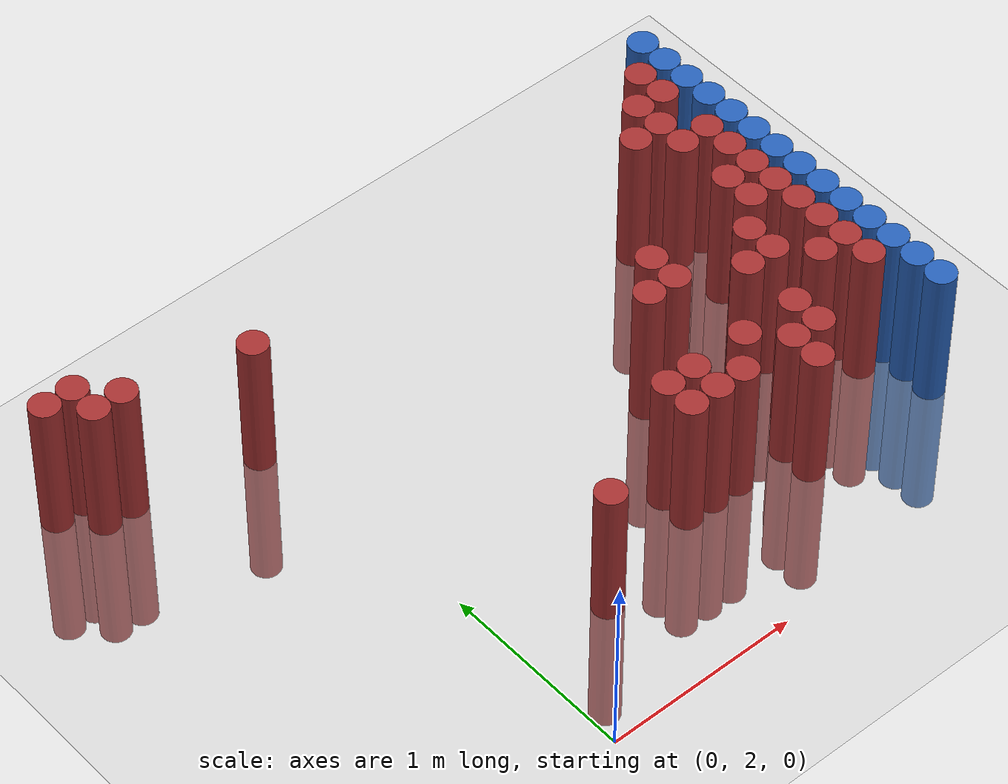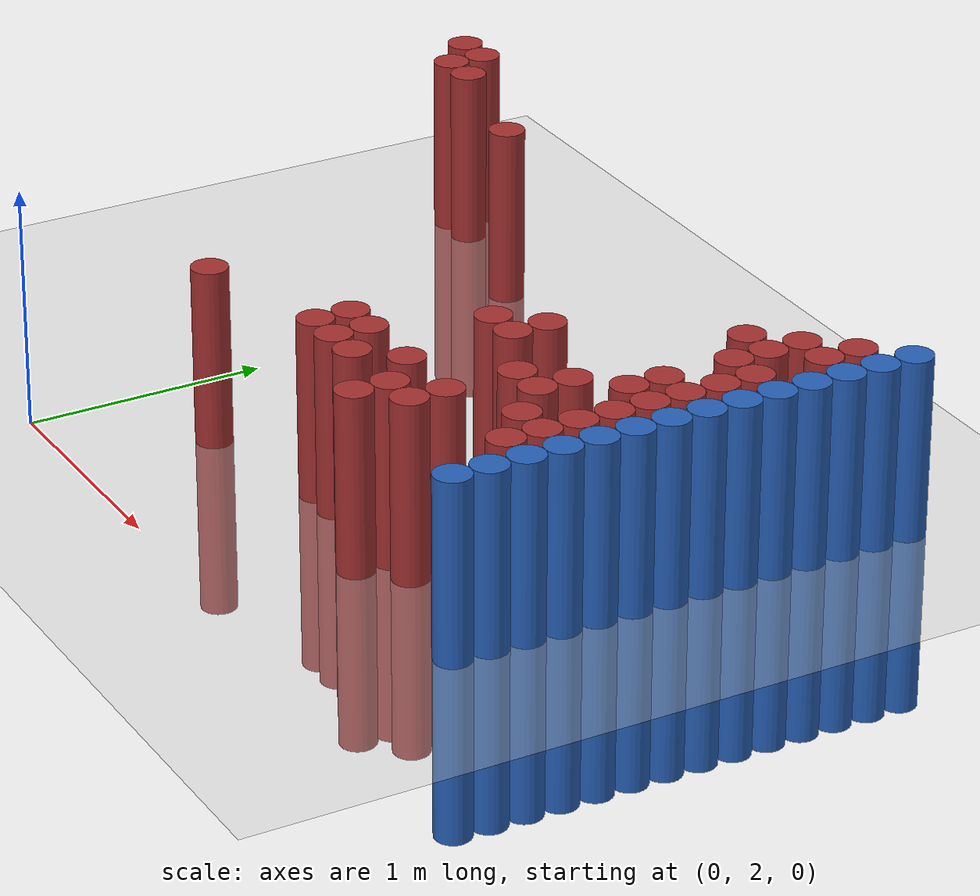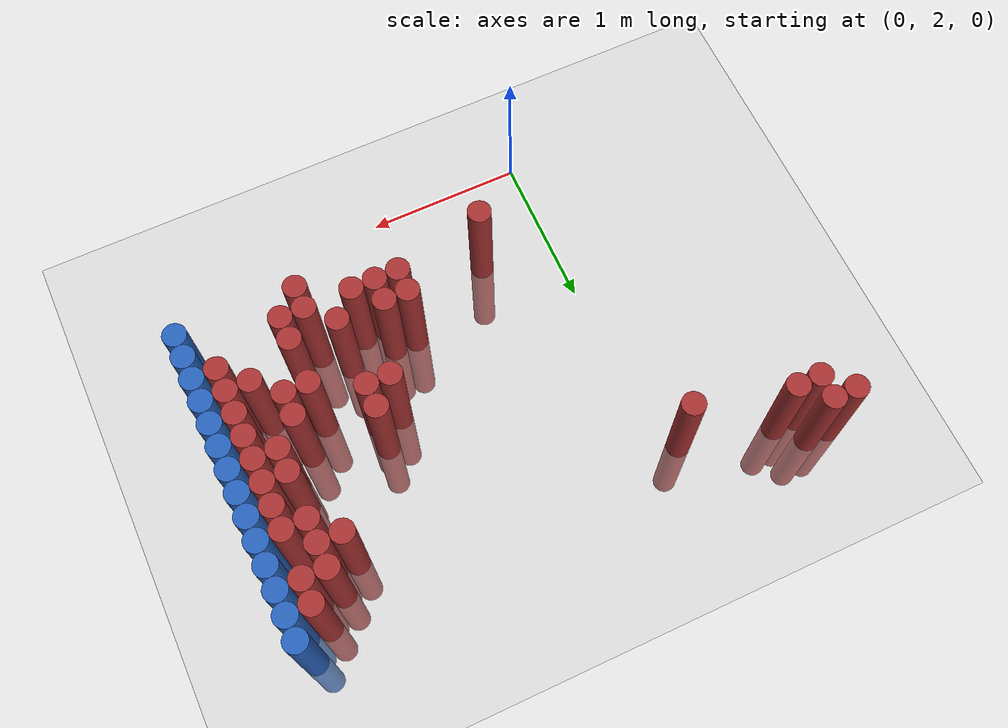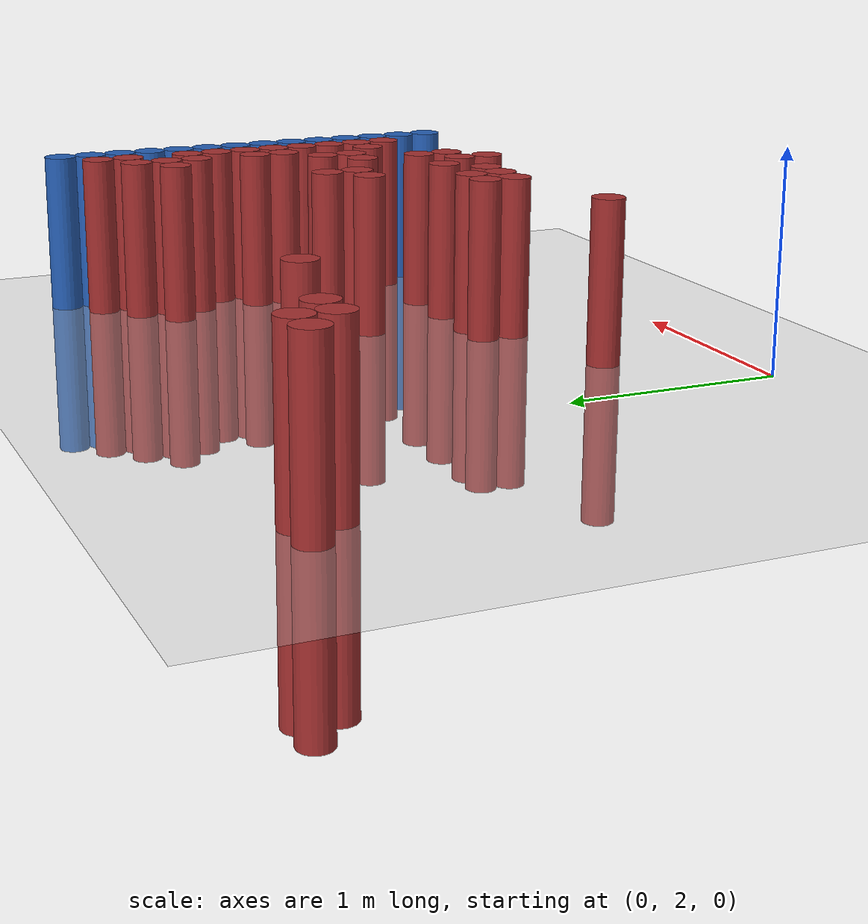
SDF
<sdf version="1.6">
 <world name="default">
  <model name="ground_plane">
   <static>1</static>
   <link name="link">
    <collision name="collision">
     <geometry><plane><normal>0 0 1</normal><size>100 100</size></plane></geometry>
     <surface><friction><ode><mu>100</mu><mu2>50</mu2></ode></friction></surface>
    </collision>
    <visual name="visual">
     <cast_shadows>0</cast_shadows>
     <geometry><plane><normal>0 0 1</normal><size>100 100</size></plane></geometry>
     <material>
      <script><uri>file://media/materials/scripts/gazebo.material</uri><name>Gazebo/Grey</name></script>
     </material>
    </visual>
   </link>
  </model>
  <model name="unit_cylinder_158">
   <static>1</static>
   <pose>-1.025000 4.525000 0.000000 0.000000 0.000000 0.000000</pose>
   <link name="link">
    <inertial>
     <mass>1</mass>
     <inertia><ixx>0.145833</ixx><ixy>0</ixy><ixz>0</ixz><iyy>0.145833</iyy><iyz>0</iyz><izz>0.125</izz></inertia>
    </inertial>
    <collision name="collision">
     <geometry><cylinder><radius>0.075000</radius><length>1.5</length></cylinder></geometry>
    </collision>
    <visual name="visual">
     <geometry><cylinder><radius>0.075000</radius><length>1.5</length></cylinder></geometry>
     <material>
      <ambient>0.648000 0.192000 0.192000 1</ambient>
      <diffuse>0.648000 0.192000 0.192000 1</diffuse>
     </material>
     <material>
      <script><name>Gazebo/Grey</name><uri>file://media/materials/scripts/gazebo.material</uri></script>
     </material>
    </visual>
   </link>
  </model>
  <model name="unit_cylinder_164">
   <static>1</static>
   <pose>-0.875000 4.375000 0.000000 0.000000 0.000000 0.000000</pose>
   <link name="link">
    <inertial>
     <mass>1</mass>
     <inertia><ixx>0.145833</ixx><ixy>0</ixy><ixz>0</ixz><iyy>0.145833</iyy><iyz>0</iyz><izz>0.125</izz></inertia>
    </inertial>
    <collision name="collision">
     <geometry><cylinder><radius>0.075000</radius><length>1.5</length></cylinder></geometry>
    </collision>
    <visual name="visual">
     <geometry><cylinder><radius>0.075000</radius><length>1.5</length></cylinder></geometry>
     <material>
      <ambient>0.648000 0.192000 0.192000 1</ambient>
      <diffuse>0.648000 0.192000 0.192000 1</diffuse>
     </material>
     <material>
      <script><name>Gazebo/Grey</name><uri>file://media/materials/scripts/gazebo.material</uri></script>
     </material>
    </visual>
   </link>
  </model>
  <model name="unit_cylinder_165">
   <static>1</static>
   <pose>-0.875000 4.525000 0.000000 0.000000 0.000000 0.000000</pose>
   <link name="link">
    <inertial>
     <mass>1</mass>
     <inertia><ixx>0.145833</ixx><ixy>0</ixy><ixz>0</ixz><iyy>0.145833</iyy><iyz>0</iyz><izz>0.125</izz></inertia>
    </inertial>
    <collision name="collision">
     <geometry><cylinder><radius>0.075000</radius><length>1.5</length></cylinder></geometry>
    </collision>
    <visual name="visual">
     <geometry><cylinder><radius>0.075000</radius><length>1.5</length></cylinder></geometry>
     <material>
      <ambient>0.648000 0.192000 0.192000 1</ambient>
      <diffuse>0.648000 0.192000 0.192000 1</diffuse>
     </material>
     <material>
      <script><name>Gazebo/Grey</name><uri>file://media/materials/scripts/gazebo.material</uri></script>
     </material>
    </visual>
   </link>
  </model>
  <model name="unit_cylinder_167">
   <static>1</static>
   <pose>-0.725000 4.375000 0.000000 0.000000 0.000000 0.000000</pose>
   <link name="link">
    <inertial>
     <mass>1</mass>
     <inertia><ixx>0.145833</ixx><ixy>0</ixy><ixz>0</ixz><iyy>0.145833</iyy><iyz>0</iyz><izz>0.125</izz></inertia>
    </inertial>
    <collision name="collision">
     <geometry><cylinder><radius>0.075000</radius><length>1.5</length></cylinder></geometry>
    </collision>
    <visual name="visual">
     <geometry><cylinder><radius>0.075000</radius><length>1.5</length></cylinder></geometry>
     <material>
      <ambient>0.648000 0.192000 0.192000 1</ambient>
      <diffuse>0.648000 0.192000 0.192000 1</diffuse>
     </material>
     <material>
      <script><name>Gazebo/Grey</name><uri>file://media/materials/scripts/gazebo.material</uri></script>
     </material>
    </visual>
   </link>
  </model>
  <model name="unit_cylinder_168">
   <static>1</static>
   <pose>-0.125000 4.225000 0.000000 0.000000 0.000000 0.000000</pose>
   <link name="link">
    <inertial>
     <mass>1</mass>
     <inertia><ixx>0.145833</ixx><ixy>0</ixy><ixz>0</ixz><iyy>0.145833</iyy><iyz>0</iyz><izz>0.125</izz></inertia>
    </inertial>
    <collision name="collision">
     <geometry><cylinder><radius>0.075000</radius><length>1.5</length></cylinder></geometry>
    </collision>
    <visual name="visual">
     <geometry><cylinder><radius>0.075000</radius><length>1.5</length></cylinder></geometry>
     <material>
      <ambient>0.648000 0.192000 0.192000 1</ambient>
      <diffuse>0.648000 0.192000 0.192000 1</diffuse>
     </material>
     <material>
      <script><name>Gazebo/Grey</name><uri>file://media/materials/scripts/gazebo.material</uri></script>
     </material>
    </visual>
   </link>
  </model>
  <model name="unit_cylinder_170">
   <static>1</static>
   <pose>0.475000 2.575000 0.000000 0.000000 0.000000 0.000000</pose>
   <link name="link">
    <inertial>
     <mass>1</mass>
     <inertia><ixx>0.145833</ixx><ixy>0</ixy><ixz>0</ixz><iyy>0.145833</iyy><iyz>0</iyz><izz>0.125</izz></inertia>
    </inertial>
    <collision name="collision">
     <geometry><cylinder><radius>0.075000</radius><length>1.5</length></cylinder></geometry>
    </collision>
    <visual name="visual">
     <geometry><cylinder><radius>0.075000</radius><length>1.5</length></cylinder></geometry>
     <material>
      <ambient>0.648000 0.192000 0.192000 1</ambient>
      <diffuse>0.648000 0.192000 0.192000 1</diffuse>
     </material>
     <material>
      <script><name>Gazebo/Grey</name><uri>file://media/materials/scripts/gazebo.material</uri></script>
     </material>
    </visual>
   </link>
  </model>
  <model name="unit_cylinder_183">
   <static>1</static>
   <pose>1.075000 2.725000 0.000000 0.000000 0.000000 0.000000</pose>
   <link name="link">
    <inertial>
     <mass>1</mass>
     <inertia><ixx>0.145833</ixx><ixy>0</ixy><ixz>0</ixz><iyy>0.145833</iyy><iyz>0</iyz><izz>0.125</izz></inertia>
    </inertial>
    <collision name="collision">
     <geometry><cylinder><radius>0.075000</radius><length>1.5</length></cylinder></geometry>
    </collision>
    <visual name="visual">
     <geometry><cylinder><radius>0.075000</radius><length>1.5</length></cylinder></geometry>
     <material>
      <ambient>0.648000 0.192000 0.192000 1</ambient>
      <diffuse>0.648000 0.192000 0.192000 1</diffuse>
     </material>
     <material>
      <script><name>Gazebo/Grey</name><uri>file://media/materials/scripts/gazebo.material</uri></script>
     </material>
    </visual>
   </link>
  </model>
  <model name="unit_cylinder_184">
   <static>1</static>
   <pose>1.075000 2.875000 0.000000 0.000000 0.000000 0.000000</pose>
   <link name="link">
    <inertial>
     <mass>1</mass>
     <inertia><ixx>0.145833</ixx><ixy>0</ixy><ixz>0</ixz><iyy>0.145833</iyy><iyz>0</iyz><izz>0.125</izz></inertia>
    </inertial>
    <collision name="collision">
     <geometry><cylinder><radius>0.075000</radius><length>1.5</length></cylinder></geometry>
    </collision>
    <visual name="visual">
     <geometry><cylinder><radius>0.075000</radius><length>1.5</length></cylinder></geometry>
     <material>
      <ambient>0.648000 0.192000 0.192000 1</ambient>
      <diffuse>0.648000 0.192000 0.192000 1</diffuse>
     </material>
     <material>
      <script><name>Gazebo/Grey</name><uri>file://media/materials/scripts/gazebo.material</uri></script>
     </material>
    </visual>
   </link>
  </model>
  <model name="unit_cylinder_187">
   <static>1</static>
   <pose>1.225000 2.725000 0.000000 0.000000 0.000000 0.000000</pose>
   <link name="link">
    <inertial>
     <mass>1</mass>
     <inertia><ixx>0.145833</ixx><ixy>0</ixy><ixz>0</ixz><iyy>0.145833</iyy><iyz>0</iyz><izz>0.125</izz></inertia>
    </inertial>
    <collision name="collision">
     <geometry><cylinder><radius>0.075000</radius><length>1.5</length></cylinder></geometry>
    </collision>
    <visual name="visual">
     <geometry><cylinder><radius>0.075000</radius><length>1.5</length></cylinder></geometry>
     <material>
      <ambient>0.648000 0.192000 0.192000 1</ambient>
      <diffuse>0.648000 0.192000 0.192000 1</diffuse>
     </material>
     <material>
      <script><name>Gazebo/Grey</name><uri>file://media/materials/scripts/gazebo.material</uri></script>
     </material>
    </visual>
   </link>
  </model>
  <model name="unit_cylinder_188">
   <static>1</static>
   <pose>1.225000 2.875000 0.000000 0.000000 0.000000 0.000000</pose>
   <link name="link">
    <inertial>
     <mass>1</mass>
     <inertia><ixx>0.145833</ixx><ixy>0</ixy><ixz>0</ixz><iyy>0.145833</iyy><iyz>0</iyz><izz>0.125</izz></inertia>
    </inertial>
    <collision name="collision">
     <geometry><cylinder><radius>0.075000</radius><length>1.5</length></cylinder></geometry>
    </collision>
    <visual name="visual">
     <geometry><cylinder><radius>0.075000</radius><length>1.5</length></cylinder></geometry>
     <material>
      <ambient>0.648000 0.192000 0.192000 1</ambient>
      <diffuse>0.648000 0.192000 0.192000 1</diffuse>
     </material>
     <material>
      <script><name>Gazebo/Grey</name><uri>file://media/materials/scripts/gazebo.material</uri></script>
     </material>
    </visual>
   </link>
  </model>
  <model name="unit_cylinder_191">
   <static>1</static>
   <pose>1.375000 2.725000 0.000000 0.000000 0.000000 0.000000</pose>
   <link name="link">
    <inertial>
     <mass>1</mass>
     <inertia><ixx>0.145833</ixx><ixy>0</ixy><ixz>0</ixz><iyy>0.145833</iyy><iyz>0</iyz><izz>0.125</izz></inertia>
    </inertial>
    <collision name="collision">
     <geometry><cylinder><radius>0.075000</radius><length>1.5</length></cylinder></geometry>
    </collision>
    <visual name="visual">
     <geometry><cylinder><radius>0.075000</radius><length>1.5</length></cylinder></geometry>
     <material>
      <ambient>0.648000 0.192000 0.192000 1</ambient>
      <diffuse>0.648000 0.192000 0.192000 1</diffuse>
     </material>
     <material>
      <script><name>Gazebo/Grey</name><uri>file://media/materials/scripts/gazebo.material</uri></script>
     </material>
    </visual>
   </link>
  </model>
  <model name="unit_cylinder_192">
   <static>1</static>
   <pose>1.375000 3.325000 0.000000 0.000000 0.000000 0.000000</pose>
   <link name="link">
    <inertial>
     <mass>1</mass>
     <inertia><ixx>0.145833</ixx><ixy>0</ixy><ixz>0</ixz><iyy>0.145833</iyy><iyz>0</iyz><izz>0.125</izz></inertia>
    </inertial>
    <collision name="collision">
     <geometry><cylinder><radius>0.075000</radius><length>1.5</length></cylinder></geometry>
    </collision>
    <visual name="visual">
     <geometry><cylinder><radius>0.075000</radius><length>1.5</length></cylinder></geometry>
     <material>
      <ambient>0.648000 0.192000 0.192000 1</ambient>
      <diffuse>0.648000 0.192000 0.192000 1</diffuse>
     </material>
     <material>
      <script><name>Gazebo/Grey</name><uri>file://media/materials/scripts/gazebo.material</uri></script>
     </material>
    </visual>
   </link>
  </model>
  <model name="unit_cylinder_193">
   <static>1</static>
   <pose>1.525000 2.875000 0.000000 0.000000 0.000000 0.000000</pose>
   <link name="link">
    <inertial>
     <mass>1</mass>
     <inertia><ixx>0.145833</ixx><ixy>0</ixy><ixz>0</ixz><iyy>0.145833</iyy><iyz>0</iyz><izz>0.125</izz></inertia>
    </inertial>
    <collision name="collision">
     <geometry><cylinder><radius>0.075000</radius><length>1.5</length></cylinder></geometry>
    </collision>
    <visual name="visual">
     <geometry><cylinder><radius>0.075000</radius><length>1.5</length></cylinder></geometry>
     <material>
      <ambient>0.648000 0.192000 0.192000 1</ambient>
      <diffuse>0.648000 0.192000 0.192000 1</diffuse>
     </material>
     <material>
      <script><name>Gazebo/Grey</name><uri>file://media/materials/scripts/gazebo.material</uri></script>
     </material>
    </visual>
   </link>
  </model>
  <model name="unit_cylinder_194">
   <static>1</static>
   <pose>1.525000 3.325000 0.000000 0.000000 0.000000 0.000000</pose>
   <link name="link">
    <inertial>
     <mass>1</mass>
     <inertia><ixx>0.145833</ixx><ixy>0</ixy><ixz>0</ixz><iyy>0.145833</iyy><iyz>0</iyz><izz>0.125</izz></inertia>
    </inertial>
    <collision name="collision">
     <geometry><cylinder><radius>0.075000</radius><length>1.5</length></cylinder></geometry>
    </collision>
    <visual name="visual">
     <geometry><cylinder><radius>0.075000</radius><length>1.5</length></cylinder></geometry>
     <material>
      <ambient>0.648000 0.192000 0.192000 1</ambient>
      <diffuse>0.648000 0.192000 0.192000 1</diffuse>
     </material>
     <material>
      <script><name>Gazebo/Grey</name><uri>file://media/materials/scripts/gazebo.material</uri></script>
     </material>
    </visual>
   </link>
  </model>
  <model name="unit_cylinder_195">
   <static>1</static>
   <pose>1.525000 3.475000 0.000000 0.000000 0.000000 0.000000</pose>
   <link name="link">
    <inertial>
     <mass>1</mass>
     <inertia><ixx>0.145833</ixx><ixy>0</ixy><ixz>0</ixz><iyy>0.145833</iyy><iyz>0</iyz><izz>0.125</izz></inertia>
    </inertial>
    <collision name="collision">
     <geometry><cylinder><radius>0.075000</radius><length>1.5</length></cylinder></geometry>
    </collision>
    <visual name="visual">
     <geometry><cylinder><radius>0.075000</radius><length>1.5</length></cylinder></geometry>
     <material>
      <ambient>0.648000 0.192000 0.192000 1</ambient>
      <diffuse>0.648000 0.192000 0.192000 1</diffuse>
     </material>
     <material>
      <script><name>Gazebo/Grey</name><uri>file://media/materials/scripts/gazebo.material</uri></script>
     </material>
    </visual>
   </link>
  </model>
  <model name="unit_cylinder_197">
   <static>1</static>
   <pose>1.675000 2.575000 0.000000 0.000000 0.000000 0.000000</pose>
   <link name="link">
    <inertial>
     <mass>1</mass>
     <inertia><ixx>0.145833</ixx><ixy>0</ixy><ixz>0</ixz><iyy>0.145833</iyy><iyz>0</iyz><izz>0.125</izz></inertia>
    </inertial>
    <collision name="collision">
     <geometry><cylinder><radius>0.075000</radius><length>1.5</length></cylinder></geometry>
    </collision>
    <visual name="visual">
     <geometry><cylinder><radius>0.075000</radius><length>1.5</length></cylinder></geometry>
     <material>
      <ambient>0.648000 0.192000 0.192000 1</ambient>
      <diffuse>0.648000 0.192000 0.192000 1</diffuse>
     </material>
     <material>
      <script><name>Gazebo/Grey</name><uri>file://media/materials/scripts/gazebo.material</uri></script>
     </material>
    </visual>
   </link>
  </model>
  <model name="unit_cylinder_198">
   <static>1</static>
   <pose>1.675000 2.725000 0.000000 0.000000 0.000000 0.000000</pose>
   <link name="link">
    <inertial>
     <mass>1</mass>
     <inertia><ixx>0.145833</ixx><ixy>0</ixy><ixz>0</ixz><iyy>0.145833</iyy><iyz>0</iyz><izz>0.125</izz></inertia>
    </inertial>
    <collision name="collision">
     <geometry><cylinder><radius>0.075000</radius><length>1.5</length></cylinder></geometry>
    </collision>
    <visual name="visual">
     <geometry><cylinder><radius>0.075000</radius><length>1.5</length></cylinder></geometry>
     <material>
      <ambient>0.648000 0.192000 0.192000 1</ambient>
      <diffuse>0.648000 0.192000 0.192000 1</diffuse>
     </material>
     <material>
      <script><name>Gazebo/Grey</name><uri>file://media/materials/scripts/gazebo.material</uri></script>
     </material>
    </visual>
   </link>
  </model>
  <model name="unit_cylinder_202">
   <static>1</static>
   <pose>1.825000 2.725000 0.000000 0.000000 0.000000 0.000000</pose>
   <link name="link">
    <inertial>
     <mass>1</mass>
     <inertia><ixx>0.145833</ixx><ixy>0</ixy><ixz>0</ixz><iyy>0.145833</iyy><iyz>0</iyz><izz>0.125</izz></inertia>
    </inertial>
    <collision name="collision">
     <geometry><cylinder><radius>0.075000</radius><length>1.5</length></cylinder></geometry>
    </collision>
    <visual name="visual">
     <geometry><cylinder><radius>0.075000</radius><length>1.5</length></cylinder></geometry>
     <material>
      <ambient>0.648000 0.192000 0.192000 1</ambient>
      <diffuse>0.648000 0.192000 0.192000 1</diffuse>
     </material>
     <material>
      <script><name>Gazebo/Grey</name><uri>file://media/materials/scripts/gazebo.material</uri></script>
     </material>
    </visual>
   </link>
  </model>
  <model name="unit_cylinder_203">
   <static>1</static>
   <pose>1.825000 2.875000 0.000000 0.000000 0.000000 0.000000</pose>
   <link name="link">
    <inertial>
     <mass>1</mass>
     <inertia><ixx>0.145833</ixx><ixy>0</ixy><ixz>0</ixz><iyy>0.145833</iyy><iyz>0</iyz><izz>0.125</izz></inertia>
    </inertial>
    <collision name="collision">
     <geometry><cylinder><radius>0.075000</radius><length>1.5</length></cylinder></geometry>
    </collision>
    <visual name="visual">
     <geometry><cylinder><radius>0.075000</radius><length>1.5</length></cylinder></geometry>
     <material>
      <ambient>0.648000 0.192000 0.192000 1</ambient>
      <diffuse>0.648000 0.192000 0.192000 1</diffuse>
     </material>
     <material>
      <script><name>Gazebo/Grey</name><uri>file://media/materials/scripts/gazebo.material</uri></script>
     </material>
    </visual>
   </link>
  </model>
  <model name="unit_cylinder_204">
   <static>1</static>
   <pose>1.825000 3.175000 0.000000 0.000000 0.000000 0.000000</pose>
   <link name="link">
    <inertial>
     <mass>1</mass>
     <inertia><ixx>0.145833</ixx><ixy>0</ixy><ixz>0</ixz><iyy>0.145833</iyy><iyz>0</iyz><izz>0.125</izz></inertia>
    </inertial>
    <collision name="collision">
     <geometry><cylinder><radius>0.075000</radius><length>1.5</length></cylinder></geometry>
    </collision>
    <visual name="visual">
     <geometry><cylinder><radius>0.075000</radius><length>1.5</length></cylinder></geometry>
     <material>
      <ambient>0.648000 0.192000 0.192000 1</ambient>
      <diffuse>0.648000 0.192000 0.192000 1</diffuse>
     </material>
     <material>
      <script><name>Gazebo/Grey</name><uri>file://media/materials/scripts/gazebo.material</uri></script>
     </material>
    </visual>
   </link>
  </model>
  <model name="unit_cylinder_208">
   <static>1</static>
   <pose>1.975000 3.175000 0.000000 0.000000 0.000000 0.000000</pose>
   <link name="link">
    <inertial>
     <mass>1</mass>
     <inertia><ixx>0.145833</ixx><ixy>0</ixy><ixz>0</ixz><iyy>0.145833</iyy><iyz>0</iyz><izz>0.125</izz></inertia>
    </inertial>
    <collision name="collision">
     <geometry><cylinder><radius>0.075000</radius><length>1.5</length></cylinder></geometry>
    </collision>
    <visual name="visual">
     <geometry><cylinder><radius>0.075000</radius><length>1.5</length></cylinder></geometry>
     <material>
      <ambient>0.648000 0.192000 0.192000 1</ambient>
      <diffuse>0.648000 0.192000 0.192000 1</diffuse>
     </material>
     <material>
      <script><name>Gazebo/Grey</name><uri>file://media/materials/scripts/gazebo.material</uri></script>
     </material>
    </visual>
   </link>
  </model>
  <model name="unit_cylinder_209">
   <static>1</static>
   <pose>1.975000 3.325000 0.000000 0.000000 0.000000 0.000000</pose>
   <link name="link">
    <inertial>
     <mass>1</mass>
     <inertia><ixx>0.145833</ixx><ixy>0</ixy><ixz>0</ixz><iyy>0.145833</iyy><iyz>0</iyz><izz>0.125</izz></inertia>
    </inertial>
    <collision name="collision">
     <geometry><cylinder><radius>0.075000</radius><length>1.5</length></cylinder></geometry>
    </collision>
    <visual name="visual">
     <geometry><cylinder><radius>0.075000</radius><length>1.5</length></cylinder></geometry>
     <material>
      <ambient>0.648000 0.192000 0.192000 1</ambient>
      <diffuse>0.648000 0.192000 0.192000 1</diffuse>
     </material>
     <material>
      <script><name>Gazebo/Grey</name><uri>file://media/materials/scripts/gazebo.material</uri></script>
     </material>
    </visual>
   </link>
  </model>
  <model name="unit_cylinder_210">
   <static>1</static>
   <pose>1.975000 4.075000 0.000000 0.000000 0.000000 0.000000</pose>
   <link name="link">
    <inertial>
     <mass>1</mass>
     <inertia><ixx>0.145833</ixx><ixy>0</ixy><ixz>0</ixz><iyy>0.145833</iyy><iyz>0</iyz><izz>0.125</izz></inertia>
    </inertial>
    <collision name="collision">
     <geometry><cylinder><radius>0.075000</radius><length>1.5</length></cylinder></geometry>
    </collision>
    <visual name="visual">
     <geometry><cylinder><radius>0.075000</radius><length>1.5</length></cylinder></geometry>
     <material>
      <ambient>0.648000 0.192000 0.192000 1</ambient>
      <diffuse>0.648000 0.192000 0.192000 1</diffuse>
     </material>
     <material>
      <script><name>Gazebo/Grey</name><uri>file://media/materials/scripts/gazebo.material</uri></script>
     </material>
    </visual>
   </link>
  </model>
  <model name="unit_cylinder_211">
   <static>1</static>
   <pose>2.125000 3.025000 0.000000 0.000000 0.000000 0.000000</pose>
   <link name="link">
    <inertial>
     <mass>1</mass>
     <inertia><ixx>0.145833</ixx><ixy>0</ixy><ixz>0</ixz><iyy>0.145833</iyy><iyz>0</iyz><izz>0.125</izz></inertia>
    </inertial>
    <collision name="collision">
     <geometry><cylinder><radius>0.075000</radius><length>1.5</length></cylinder></geometry>
    </collision>
    <visual name="visual">
     <geometry><cylinder><radius>0.075000</radius><length>1.5</length></cylinder></geometry>
     <material>
      <ambient>0.648000 0.192000 0.192000 1</ambient>
      <diffuse>0.648000 0.192000 0.192000 1</diffuse>
     </material>
     <material>
      <script><name>Gazebo/Grey</name><uri>file://media/materials/scripts/gazebo.material</uri></script>
     </material>
    </visual>
   </link>
  </model>
  <model name="unit_cylinder_212">
   <static>1</static>
   <pose>2.125000 3.475000 0.000000 0.000000 0.000000 0.000000</pose>
   <link name="link">
    <inertial>
     <mass>1</mass>
     <inertia><ixx>0.145833</ixx><ixy>0</ixy><ixz>0</ixz><iyy>0.145833</iyy><iyz>0</iyz><izz>0.125</izz></inertia>
    </inertial>
    <collision name="collision">
     <geometry><cylinder><radius>0.075000</radius><length>1.5</length></cylinder></geometry>
    </collision>
    <visual name="visual">
     <geometry><cylinder><radius>0.075000</radius><length>1.5</length></cylinder></geometry>
     <material>
      <ambient>0.648000 0.192000 0.192000 1</ambient>
      <diffuse>0.648000 0.192000 0.192000 1</diffuse>
     </material>
     <material>
      <script><name>Gazebo/Grey</name><uri>file://media/materials/scripts/gazebo.material</uri></script>
     </material>
    </visual>
   </link>
  </model>
  <model name="unit_cylinder_213">
   <static>1</static>
   <pose>2.125000 3.625000 0.000000 0.000000 0.000000 0.000000</pose>
   <link name="link">
    <inertial>
     <mass>1</mass>
     <inertia><ixx>0.145833</ixx><ixy>0</ixy><ixz>0</ixz><iyy>0.145833</iyy><iyz>0</iyz><izz>0.125</izz></inertia>
    </inertial>
    <collision name="collision">
     <geometry><cylinder><radius>0.075000</radius><length>1.5</length></cylinder></geometry>
    </collision>
    <visual name="visual">
     <geometry><cylinder><radius>0.075000</radius><length>1.5</length></cylinder></geometry>
     <material>
      <ambient>0.648000 0.192000 0.192000 1</ambient>
      <diffuse>0.648000 0.192000 0.192000 1</diffuse>
     </material>
     <material>
      <script><name>Gazebo/Grey</name><uri>file://media/materials/scripts/gazebo.material</uri></script>
     </material>
    </visual>
   </link>
  </model>
  <model name="unit_cylinder_214">
   <static>1</static>
   <pose>2.125000 3.925000 0.000000 0.000000 0.000000 0.000000</pose>
   <link name="link">
    <inertial>
     <mass>1</mass>
     <inertia><ixx>0.145833</ixx><ixy>0</ixy><ixz>0</ixz><iyy>0.145833</iyy><iyz>0</iyz><izz>0.125</izz></inertia>
    </inertial>
    <collision name="collision">
     <geometry><cylinder><radius>0.075000</radius><length>1.5</length></cylinder></geometry>
    </collision>
    <visual name="visual">
     <geometry><cylinder><radius>0.075000</radius><length>1.5</length></cylinder></geometry>
     <material>
      <ambient>0.648000 0.192000 0.192000 1</ambient>
      <diffuse>0.648000 0.192000 0.192000 1</diffuse>
     </material>
     <material>
      <script><name>Gazebo/Grey</name><uri>file://media/materials/scripts/gazebo.material</uri></script>
     </material>
    </visual>
   </link>
  </model>
  <model name="unit_cylinder_215">
   <static>1</static>
   <pose>2.125000 4.075000 0.000000 0.000000 0.000000 0.000000</pose>
   <link name="link">
    <inertial>
     <mass>1</mass>
     <inertia><ixx>0.145833</ixx><ixy>0</ixy><ixz>0</ixz><iyy>0.145833</iyy><iyz>0</iyz><izz>0.125</izz></inertia>
    </inertial>
    <collision name="collision">
     <geometry><cylinder><radius>0.075000</radius><length>1.5</length></cylinder></geometry>
    </collision>
    <visual name="visual">
     <geometry><cylinder><radius>0.075000</radius><length>1.5</length></cylinder></geometry>
     <material>
      <ambient>0.648000 0.192000 0.192000 1</ambient>
      <diffuse>0.648000 0.192000 0.192000 1</diffuse>
     </material>
     <material>
      <script><name>Gazebo/Grey</name><uri>file://media/materials/scripts/gazebo.material</uri></script>
     </material>
    </visual>
   </link>
  </model>
  <model name="unit_cylinder_216">
   <static>1</static>
   <pose>2.125000 4.225000 0.000000 0.000000 0.000000 0.000000</pose>
   <link name="link">
    <inertial>
     <mass>1</mass>
     <inertia><ixx>0.145833</ixx><ixy>0</ixy><ixz>0</ixz><iyy>0.145833</iyy><iyz>0</iyz><izz>0.125</izz></inertia>
    </inertial>
    <collision name="collision">
     <geometry><cylinder><radius>0.075000</radius><length>1.5</length></cylinder></geometry>
    </collision>
    <visual name="visual">
     <geometry><cylinder><radius>0.075000</radius><length>1.5</length></cylinder></geometry>
     <material>
      <ambient>0.648000 0.192000 0.192000 1</ambient>
      <diffuse>0.648000 0.192000 0.192000 1</diffuse>
     </material>
     <material>
      <script><name>Gazebo/Grey</name><uri>file://media/materials/scripts/gazebo.material</uri></script>
     </material>
    </visual>
   </link>
  </model>
  <model name="unit_cylinder_222">
   <static>1</static>
   <pose>2.275000 2.875000 0.000000 0.000000 0.000000 0.000000</pose>
   <link name="link">
    <inertial>
     <mass>1</mass>
     <inertia><ixx>0.145833</ixx><ixy>0</ixy><ixz>0</ixz><iyy>0.145833</iyy><iyz>0</iyz><izz>0.125</izz></inertia>
    </inertial>
    <collision name="collision">
     <geometry><cylinder><radius>0.075000</radius><length>1.5</length></cylinder></geometry>
    </collision>
    <visual name="visual">
     <geometry><cylinder><radius>0.075000</radius><length>1.5</length></cylinder></geometry>
     <material>
      <ambient>0.648000 0.192000 0.192000 1</ambient>
      <diffuse>0.648000 0.192000 0.192000 1</diffuse>
     </material>
     <material>
      <script><name>Gazebo/Grey</name><uri>file://media/materials/scripts/gazebo.material</uri></script>
     </material>
    </visual>
   </link>
  </model>
  <model name="unit_cylinder_223">
   <static>1</static>
   <pose>2.275000 3.025000 0.000000 0.000000 0.000000 0.000000</pose>
   <link name="link">
    <inertial>
     <mass>1</mass>
     <inertia><ixx>0.145833</ixx><ixy>0</ixy><ixz>0</ixz><iyy>0.145833</iyy><iyz>0</iyz><izz>0.125</izz></inertia>
    </inertial>
    <collision name="collision">
     <geometry><cylinder><radius>0.075000</radius><length>1.5</length></cylinder></geometry>
    </collision>
    <visual name="visual">
     <geometry><cylinder><radius>0.075000</radius><length>1.5</length></cylinder></geometry>
     <material>
      <ambient>0.648000 0.192000 0.192000 1</ambient>
      <diffuse>0.648000 0.192000 0.192000 1</diffuse>
     </material>
     <material>
      <script><name>Gazebo/Grey</name><uri>file://media/materials/scripts/gazebo.material</uri></script>
     </material>
    </visual>
   </link>
  </model>
  <model name="unit_cylinder_224">
   <static>1</static>
   <pose>2.275000 3.175000 0.000000 0.000000 0.000000 0.000000</pose>
   <link name="link">
    <inertial>
     <mass>1</mass>
     <inertia><ixx>0.145833</ixx><ixy>0</ixy><ixz>0</ixz><iyy>0.145833</iyy><iyz>0</iyz><izz>0.125</izz></inertia>
    </inertial>
    <collision name="collision">
     <geometry><cylinder><radius>0.075000</radius><length>1.5</length></cylinder></geometry>
    </collision>
    <visual name="visual">
     <geometry><cylinder><radius>0.075000</radius><length>1.5</length></cylinder></geometry>
     <material>
      <ambient>0.648000 0.192000 0.192000 1</ambient>
      <diffuse>0.648000 0.192000 0.192000 1</diffuse>
     </material>
     <material>
      <script><name>Gazebo/Grey</name><uri>file://media/materials/scripts/gazebo.material</uri></script>
     </material>
    </visual>
   </link>
  </model>
  <model name="unit_cylinder_225">
   <static>1</static>
   <pose>2.275000 3.325000 0.000000 0.000000 0.000000 0.000000</pose>
   <link name="link">
    <inertial>
     <mass>1</mass>
     <inertia><ixx>0.145833</ixx><ixy>0</ixy><ixz>0</ixz><iyy>0.145833</iyy><iyz>0</iyz><izz>0.125</izz></inertia>
    </inertial>
    <collision name="collision">
     <geometry><cylinder><radius>0.075000</radius><length>1.5</length></cylinder></geometry>
    </collision>
    <visual name="visual">
     <geometry><cylinder><radius>0.075000</radius><length>1.5</length></cylinder></geometry>
     <material>
      <ambient>0.648000 0.192000 0.192000 1</ambient>
      <diffuse>0.648000 0.192000 0.192000 1</diffuse>
     </material>
     <material>
      <script><name>Gazebo/Grey</name><uri>file://media/materials/scripts/gazebo.material</uri></script>
     </material>
    </visual>
   </link>
  </model>
  <model name="unit_cylinder_226">
   <static>1</static>
   <pose>2.275000 3.475000 0.000000 0.000000 0.000000 0.000000</pose>
   <link name="link">
    <inertial>
     <mass>1</mass>
     <inertia><ixx>0.145833</ixx><ixy>0</ixy><ixz>0</ixz><iyy>0.145833</iyy><iyz>0</iyz><izz>0.125</izz></inertia>
    </inertial>
    <collision name="collision">
     <geometry><cylinder><radius>0.075000</radius><length>1.5</length></cylinder></geometry>
    </collision>
    <visual name="visual">
     <geometry><cylinder><radius>0.075000</radius><length>1.5</length></cylinder></geometry>
     <material>
      <ambient>0.648000 0.192000 0.192000 1</ambient>
      <diffuse>0.648000 0.192000 0.192000 1</diffuse>
     </material>
     <material>
      <script><name>Gazebo/Grey</name><uri>file://media/materials/scripts/gazebo.material</uri></script>
     </material>
    </visual>
   </link>
  </model>
  <model name="unit_cylinder_227">
   <static>1</static>
   <pose>2.275000 3.625000 0.000000 0.000000 0.000000 0.000000</pose>
   <link name="link">
    <inertial>
     <mass>1</mass>
     <inertia><ixx>0.145833</ixx><ixy>0</ixy><ixz>0</ixz><iyy>0.145833</iyy><iyz>0</iyz><izz>0.125</izz></inertia>
    </inertial>
    <collision name="collision">
     <geometry><cylinder><radius>0.075000</radius><length>1.5</length></cylinder></geometry>
    </collision>
    <visual name="visual">
     <geometry><cylinder><radius>0.075000</radius><length>1.5</length></cylinder></geometry>
     <material>
      <ambient>0.648000 0.192000 0.192000 1</ambient>
      <diffuse>0.648000 0.192000 0.192000 1</diffuse>
     </material>
     <material>
      <script><name>Gazebo/Grey</name><uri>file://media/materials/scripts/gazebo.material</uri></script>
     </material>
    </visual>
   </link>
  </model>
  <model name="unit_cylinder_228">
   <static>1</static>
   <pose>2.275000 3.775000 0.000000 0.000000 0.000000 0.000000</pose>
   <link name="link">
    <inertial>
     <mass>1</mass>
     <inertia><ixx>0.145833</ixx><ixy>0</ixy><ixz>0</ixz><iyy>0.145833</iyy><iyz>0</iyz><izz>0.125</izz></inertia>
    </inertial>
    <collision name="collision">
     <geometry><cylinder><radius>0.075000</radius><length>1.5</length></cylinder></geometry>
    </collision>
    <visual name="visual">
     <geometry><cylinder><radius>0.075000</radius><length>1.5</length></cylinder></geometry>
     <material>
      <ambient>0.648000 0.192000 0.192000 1</ambient>
      <diffuse>0.648000 0.192000 0.192000 1</diffuse>
     </material>
     <material>
      <script><name>Gazebo/Grey</name><uri>file://media/materials/scripts/gazebo.material</uri></script>
     </material>
    </visual>
   </link>
  </model>
  <model name="unit_cylinder_229">
   <static>1</static>
   <pose>2.275000 3.925000 0.000000 0.000000 0.000000 0.000000</pose>
   <link name="link">
    <inertial>
     <mass>1</mass>
     <inertia><ixx>0.145833</ixx><ixy>0</ixy><ixz>0</ixz><iyy>0.145833</iyy><iyz>0</iyz><izz>0.125</izz></inertia>
    </inertial>
    <collision name="collision">
     <geometry><cylinder><radius>0.075000</radius><length>1.5</length></cylinder></geometry>
    </collision>
    <visual name="visual">
     <geometry><cylinder><radius>0.075000</radius><length>1.5</length></cylinder></geometry>
     <material>
      <ambient>0.648000 0.192000 0.192000 1</ambient>
      <diffuse>0.648000 0.192000 0.192000 1</diffuse>
     </material>
     <material>
      <script><name>Gazebo/Grey</name><uri>file://media/materials/scripts/gazebo.material</uri></script>
     </material>
    </visual>
   </link>
  </model>
  <model name="unit_cylinder_230">
   <static>1</static>
   <pose>2.275000 4.225000 0.000000 0.000000 0.000000 0.000000</pose>
   <link name="link">
    <inertial>
     <mass>1</mass>
     <inertia><ixx>0.145833</ixx><ixy>0</ixy><ixz>0</ixz><iyy>0.145833</iyy><iyz>0</iyz><izz>0.125</izz></inertia>
    </inertial>
    <collision name="collision">
     <geometry><cylinder><radius>0.075000</radius><length>1.5</length></cylinder></geometry>
    </collision>
    <visual name="visual">
     <geometry><cylinder><radius>0.075000</radius><length>1.5</length></cylinder></geometry>
     <material>
      <ambient>0.648000 0.192000 0.192000 1</ambient>
      <diffuse>0.648000 0.192000 0.192000 1</diffuse>
     </material>
     <material>
      <script><name>Gazebo/Grey</name><uri>file://media/materials/scripts/gazebo.material</uri></script>
     </material>
    </visual>
   </link>
  </model>
  <model name="unit_cylinder_231">
   <static>1</static>
   <pose>2.275000 4.375000 0.000000 0.000000 0.000000 0.000000</pose>
   <link name="link">
    <inertial>
     <mass>1</mass>
     <inertia><ixx>0.145833</ixx><ixy>0</ixy><ixz>0</ixz><iyy>0.145833</iyy><iyz>0</iyz><izz>0.125</izz></inertia>
    </inertial>
    <collision name="collision">
     <geometry><cylinder><radius>0.075000</radius><length>1.5</length></cylinder></geometry>
    </collision>
    <visual name="visual">
     <geometry><cylinder><radius>0.075000</radius><length>1.5</length></cylinder></geometry>
     <material>
      <ambient>0.648000 0.192000 0.192000 1</ambient>
      <diffuse>0.648000 0.192000 0.192000 1</diffuse>
     </material>
     <material>
      <script><name>Gazebo/Grey</name><uri>file://media/materials/scripts/gazebo.material</uri></script>
     </material>
    </visual>
   </link>
  </model>
  <model name="unit_cylinder_248">
   <static>1</static>
   <pose>2.425000 2.575000 0.000000 0.000000 0.000000 0.000000</pose>
   <link name="link">
    <inertial>
     <mass>1</mass>
     <inertia><ixx>0.145833</ixx><ixy>0</ixy><ixz>0</ixz><iyy>0.145833</iyy><iyz>0</iyz><izz>0.125</izz></inertia>
    </inertial>
    <collision name="collision">
     <geometry><cylinder><radius>0.075000</radius><length>1.5</length></cylinder></geometry>
    </collision>
    <visual name="visual">
     <geometry><cylinder><radius>0.075000</radius><length>1.5</length></cylinder></geometry>
     <material>
      <ambient>0.152000 0.379000 0.720000 1</ambient>
      <diffuse>0.152000 0.379000 0.720000 1</diffuse>
     </material>
     <material>
      <script><name>Gazebo/Grey</name><uri>file://media/materials/scripts/gazebo.material</uri></script>
     </material>
    </visual>
   </link>
  </model>
  <model name="unit_cylinder_249">
   <static>1</static>
   <pose>2.425000 2.725000 0.000000 0.000000 0.000000 0.000000</pose>
   <link name="link">
    <inertial>
     <mass>1</mass>
     <inertia><ixx>0.145833</ixx><ixy>0</ixy><ixz>0</ixz><iyy>0.145833</iyy><iyz>0</iyz><izz>0.125</izz></inertia>
    </inertial>
    <collision name="collision">
     <geometry><cylinder><radius>0.075000</radius><length>1.5</length></cylinder></geometry>
    </collision>
    <visual name="visual">
     <geometry><cylinder><radius>0.075000</radius><length>1.5</length></cylinder></geometry>
     <material>
      <ambient>0.152000 0.379000 0.720000 1</ambient>
      <diffuse>0.152000 0.379000 0.720000 1</diffuse>
     </material>
     <material>
      <script><name>Gazebo/Grey</name><uri>file://media/materials/scripts/gazebo.material</uri></script>
     </material>
    </visual>
   </link>
  </model>
  <model name="unit_cylinder_250">
   <static>1</static>
   <pose>2.425000 2.875000 0.000000 0.000000 0.000000 0.000000</pose>
   <link name="link">
    <inertial>
     <mass>1</mass>
     <inertia><ixx>0.145833</ixx><ixy>0</ixy><ixz>0</ixz><iyy>0.145833</iyy><iyz>0</iyz><izz>0.125</izz></inertia>
    </inertial>
    <collision name="collision">
     <geometry><cylinder><radius>0.075000</radius><length>1.5</length></cylinder></geometry>
    </collision>
    <visual name="visual">
     <geometry><cylinder><radius>0.075000</radius><length>1.5</length></cylinder></geometry>
     <material>
      <ambient>0.152000 0.379000 0.720000 1</ambient>
      <diffuse>0.152000 0.379000 0.720000 1</diffuse>
     </material>
     <material>
      <script><name>Gazebo/Grey</name><uri>file://media/materials/scripts/gazebo.material</uri></script>
     </material>
    </visual>
   </link>
  </model>
  <model name="unit_cylinder_251">
   <static>1</static>
   <pose>2.425000 3.025000 0.000000 0.000000 0.000000 0.000000</pose>
   <link name="link">
    <inertial>
     <mass>1</mass>
     <inertia><ixx>0.145833</ixx><ixy>0</ixy><ixz>0</ixz><iyy>0.145833</iyy><iyz>0</iyz><izz>0.125</izz></inertia>
    </inertial>
    <collision name="collision">
     <geometry><cylinder><radius>0.075000</radius><length>1.5</length></cylinder></geometry>
    </collision>
    <visual name="visual">
     <geometry><cylinder><radius>0.075000</radius><length>1.5</length></cylinder></geometry>
     <material>
      <ambient>0.152000 0.379000 0.720000 1</ambient>
      <diffuse>0.152000 0.379000 0.720000 1</diffuse>
     </material>
     <material>
      <script><name>Gazebo/Grey</name><uri>file://media/materials/scripts/gazebo.material</uri></script>
     </material>
    </visual>
   </link>
  </model>
  <model name="unit_cylinder_252">
   <static>1</static>
   <pose>2.425000 3.175000 0.000000 0.000000 0.000000 0.000000</pose>
   <link name="link">
    <inertial>
     <mass>1</mass>
     <inertia><ixx>0.145833</ixx><ixy>0</ixy><ixz>0</ixz><iyy>0.145833</iyy><iyz>0</iyz><izz>0.125</izz></inertia>
    </inertial>
    <collision name="collision">
     <geometry><cylinder><radius>0.075000</radius><length>1.5</length></cylinder></geometry>
    </collision>
    <visual name="visual">
     <geometry><cylinder><radius>0.075000</radius><length>1.5</length></cylinder></geometry>
     <material>
      <ambient>0.152000 0.379000 0.720000 1</ambient>
      <diffuse>0.152000 0.379000 0.720000 1</diffuse>
     </material>
     <material>
      <script><name>Gazebo/Grey</name><uri>file://media/materials/scripts/gazebo.material</uri></script>
     </material>
    </visual>
   </link>
  </model>
  <model name="unit_cylinder_253">
   <static>1</static>
   <pose>2.425000 3.325000 0.000000 0.000000 0.000000 0.000000</pose>
   <link name="link">
    <inertial>
     <mass>1</mass>
     <inertia><ixx>0.145833</ixx><ixy>0</ixy><ixz>0</ixz><iyy>0.145833</iyy><iyz>0</iyz><izz>0.125</izz></inertia>
    </inertial>
    <collision name="collision">
     <geometry><cylinder><radius>0.075000</radius><length>1.5</length></cylinder></geometry>
    </collision>
    <visual name="visual">
     <geometry><cylinder><radius>0.075000</radius><length>1.5</length></cylinder></geometry>
     <material>
      <ambient>0.152000 0.379000 0.720000 1</ambient>
      <diffuse>0.152000 0.379000 0.720000 1</diffuse>
     </material>
     <material>
      <script><name>Gazebo/Grey</name><uri>file://media/materials/scripts/gazebo.material</uri></script>
     </material>
    </visual>
   </link>
  </model>
  <model name="unit_cylinder_254">
   <static>1</static>
   <pose>2.425000 3.475000 0.000000 0.000000 0.000000 0.000000</pose>
   <link name="link">
    <inertial>
     <mass>1</mass>
     <inertia><ixx>0.145833</ixx><ixy>0</ixy><ixz>0</ixz><iyy>0.145833</iyy><iyz>0</iyz><izz>0.125</izz></inertia>
    </inertial>
    <collision name="collision">
     <geometry><cylinder><radius>0.075000</radius><length>1.5</length></cylinder></geometry>
    </collision>
    <visual name="visual">
     <geometry><cylinder><radius>0.075000</radius><length>1.5</length></cylinder></geometry>
     <material>
      <ambient>0.152000 0.379000 0.720000 1</ambient>
      <diffuse>0.152000 0.379000 0.720000 1</diffuse>
     </material>
     <material>
      <script><name>Gazebo/Grey</name><uri>file://media/materials/scripts/gazebo.material</uri></script>
     </material>
    </visual>
   </link>
  </model>
  <model name="unit_cylinder_255">
   <static>1</static>
   <pose>2.425000 3.625000 0.000000 0.000000 0.000000 0.000000</pose>
   <link name="link">
    <inertial>
     <mass>1</mass>
     <inertia><ixx>0.145833</ixx><ixy>0</ixy><ixz>0</ixz><iyy>0.145833</iyy><iyz>0</iyz><izz>0.125</izz></inertia>
    </inertial>
    <collision name="collision">
     <geometry><cylinder><radius>0.075000</radius><length>1.5</length></cylinder></geometry>
    </collision>
    <visual name="visual">
     <geometry><cylinder><radius>0.075000</radius><length>1.5</length></cylinder></geometry>
     <material>
      <ambient>0.152000 0.379000 0.720000 1</ambient>
      <diffuse>0.152000 0.379000 0.720000 1</diffuse>
     </material>
     <material>
      <script><name>Gazebo/Grey</name><uri>file://media/materials/scripts/gazebo.material</uri></script>
     </material>
    </visual>
   </link>
  </model>
  <model name="unit_cylinder_256">
   <static>1</static>
   <pose>2.425000 3.775000 0.000000 0.000000 0.000000 0.000000</pose>
   <link name="link">
    <inertial>
     <mass>1</mass>
     <inertia><ixx>0.145833</ixx><ixy>0</ixy><ixz>0</ixz><iyy>0.145833</iyy><iyz>0</iyz><izz>0.125</izz></inertia>
    </inertial>
    <collision name="collision">
     <geometry><cylinder><radius>0.075000</radius><length>1.5</length></cylinder></geometry>
    </collision>
    <visual name="visual">
     <geometry><cylinder><radius>0.075000</radius><length>1.5</length></cylinder></geometry>
     <material>
      <ambient>0.152000 0.379000 0.720000 1</ambient>
      <diffuse>0.152000 0.379000 0.720000 1</diffuse>
     </material>
     <material>
      <script><name>Gazebo/Grey</name><uri>file://media/materials/scripts/gazebo.material</uri></script>
     </material>
    </visual>
   </link>
  </model>
  <model name="unit_cylinder_257">
   <static>1</static>
   <pose>2.425000 3.925000 0.000000 0.000000 0.000000 0.000000</pose>
   <link name="link">
    <inertial>
     <mass>1</mass>
     <inertia><ixx>0.145833</ixx><ixy>0</ixy><ixz>0</ixz><iyy>0.145833</iyy><iyz>0</iyz><izz>0.125</izz></inertia>
    </inertial>
    <collision name="collision">
     <geometry><cylinder><radius>0.075000</radius><length>1.5</length></cylinder></geometry>
    </collision>
    <visual name="visual">
     <geometry><cylinder><radius>0.075000</radius><length>1.5</length></cylinder></geometry>
     <material>
      <ambient>0.152000 0.379000 0.720000 1</ambient>
      <diffuse>0.152000 0.379000 0.720000 1</diffuse>
     </material>
     <material>
      <script><name>Gazebo/Grey</name><uri>file://media/materials/scripts/gazebo.material</uri></script>
     </material>
    </visual>
   </link>
  </model>
  <model name="unit_cylinder_258">
   <static>1</static>
   <pose>2.425000 4.075000 0.000000 0.000000 0.000000 0.000000</pose>
   <link name="link">
    <inertial>
     <mass>1</mass>
     <inertia><ixx>0.145833</ixx><ixy>0</ixy><ixz>0</ixz><iyy>0.145833</iyy><iyz>0</iyz><izz>0.125</izz></inertia>
    </inertial>
    <collision name="collision">
     <geometry><cylinder><radius>0.075000</radius><length>1.5</length></cylinder></geometry>
    </collision>
    <visual name="visual">
     <geometry><cylinder><radius>0.075000</radius><length>1.5</length></cylinder></geometry>
     <material>
      <ambient>0.152000 0.379000 0.720000 1</ambient>
      <diffuse>0.152000 0.379000 0.720000 1</diffuse>
     </material>
     <material>
      <script><name>Gazebo/Grey</name><uri>file://media/materials/scripts/gazebo.material</uri></script>
     </material>
    </visual>
   </link>
  </model>
  <model name="unit_cylinder_259">
   <static>1</static>
   <pose>2.425000 4.225000 0.000000 0.000000 0.000000 0.000000</pose>
   <link name="link">
    <inertial>
     <mass>1</mass>
     <inertia><ixx>0.145833</ixx><ixy>0</ixy><ixz>0</ixz><iyy>0.145833</iyy><iyz>0</iyz><izz>0.125</izz></inertia>
    </inertial>
    <collision name="collision">
     <geometry><cylinder><radius>0.075000</radius><length>1.5</length></cylinder></geometry>
    </collision>
    <visual name="visual">
     <geometry><cylinder><radius>0.075000</radius><length>1.5</length></cylinder></geometry>
     <material>
      <ambient>0.152000 0.379000 0.720000 1</ambient>
      <diffuse>0.152000 0.379000 0.720000 1</diffuse>
     </material>
     <material>
      <script><name>Gazebo/Grey</name><uri>file://media/materials/scripts/gazebo.material</uri></script>
     </material>
    </visual>
   </link>
  </model>
  <model name="unit_cylinder_260">
   <static>1</static>
   <pose>2.425000 4.375000 0.000000 0.000000 0.000000 0.000000</pose>
   <link name="link">
    <inertial>
     <mass>1</mass>
     <inertia><ixx>0.145833</ixx><ixy>0</ixy><ixz>0</ixz><iyy>0.145833</iyy><iyz>0</iyz><izz>0.125</izz></inertia>
    </inertial>
    <collision name="collision">
     <geometry><cylinder><radius>0.075000</radius><length>1.5</length></cylinder></geometry>
    </collision>
    <visual name="visual">
     <geometry><cylinder><radius>0.075000</radius><length>1.5</length></cylinder></geometry>
     <material>
      <ambient>0.152000 0.379000 0.720000 1</ambient>
      <diffuse>0.152000 0.379000 0.720000 1</diffuse>
     </material>
     <material>
      <script><name>Gazebo/Grey</name><uri>file://media/materials/scripts/gazebo.material</uri></script>
     </material>
    </visual>
   </link>
  </model>
  <model name="unit_cylinder_261">
   <static>1</static>
   <pose>2.425000 4.525000 0.000000 0.000000 0.000000 0.000000</pose>
   <link name="link">
    <inertial>
     <mass>1</mass>
     <inertia><ixx>0.145833</ixx><ixy>0</ixy><ixz>0</ixz><iyy>0.145833</iyy><iyz>0</iyz><izz>0.125</izz></inertia>
    </inertial>
    <collision name="collision">
     <geometry><cylinder><radius>0.075000</radius><length>1.5</length></cylinder></geometry>
    </collision>
    <visual name="visual">
     <geometry><cylinder><radius>0.075000</radius><length>1.5</length></cylinder></geometry>
     <material>
      <ambient>0.152000 0.379000 0.720000 1</ambient>
      <diffuse>0.152000 0.379000 0.720000 1</diffuse>
     </material>
     <material>
      <script><name>Gazebo/Grey</name><uri>file://media/materials/scripts/gazebo.material</uri></script>
     </material>
    </visual>
   </link>
  </model>
 </world>
</sdf>
